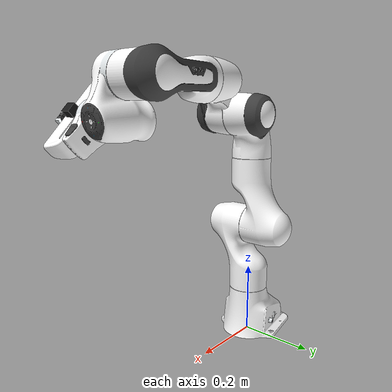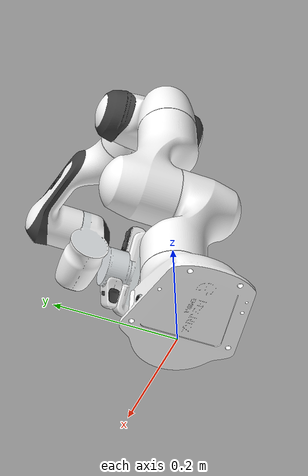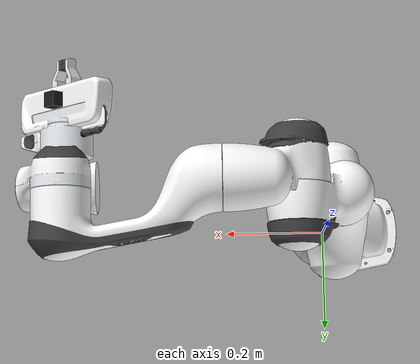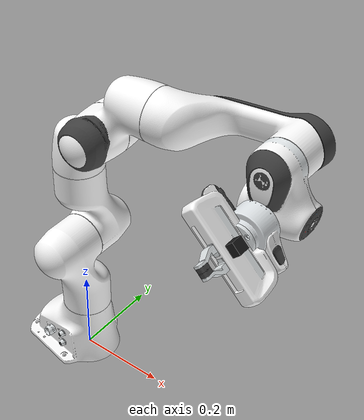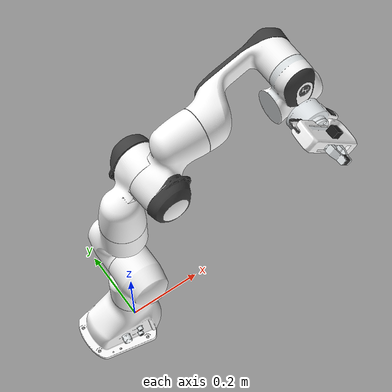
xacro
<?xml version="1.0"?>
<robot xmlns:xacro="http://www.ros.org/wiki/xacro" name="panda">
  <!-- 简化的URDF - 直接加载Gazebo配置 -->

  <xacro:include filename="$(find panda)/urdf/panda_arm.urdf.xacro"/>
  <xacro:include filename="$(find panda)/urdf/hand.xacro"/>
  <xacro:include filename="$(find panda)/urdf/camera.xacro"/>
  <xacro:include filename="$(find panda)/urdf/panda.gazebo.xacro"/>
  <xacro:include filename="$(find panda)/urdf/ros_control.xacro"/>

  <!-- 直接调用宏，移除所有条件判断 -->
  <xacro:panda_arm in_gazebo="true"/>
  <xacro:hand ns="panda" rpy="0 0 ${-pi/4}" connected_to="panda_link8"/>
  <xacro:hand_camera ns="panda" parent="panda_hand" xyz="-0.025 0 0.04" rpy="0 ${-pi/2} 0"/>
  <xacro:panda_gazebo robot_name="panda"/>

  <xacro:panda_ros_control robot_name="panda"/>

  <!-- Gazebo ros2_control 插件 -->
  <gazebo>
    <plugin name="gazebo_ros2_control" filename="libgazebo_ros2_control.so">
      <parameters>$(find panda)/config/ros2_controllers.yaml</parameters>
    </plugin>
  </gazebo>

</robot>

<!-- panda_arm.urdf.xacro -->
<robot xmlns:xacro="http://www.ros.org/wiki/xacro" name="panda">
  <xacro:macro name="panda_arm" params="arm_id:='panda' description_pkg:='panda' connected_to:='' in_gazebo='false' xyz:='0 0 0' rpy:='0 0 0'">
    <!-- If using custom frame with ${connected_to} param, make sure 'world' frame exists in its TF tree -->
    <xacro:if value="${connected_to == ''}">
      <link name="world" />
      <xacro:property name="base_frame_name" value="world"/>
    </xacro:if>
    <xacro:unless value="${connected_to == ''}">
      <xacro:property name="base_frame_name" value="${connected_to}"/>
    </xacro:unless>
    <joint name="${arm_id}_to_${base_frame_name}" type="fixed">
      <parent link="${base_frame_name}"/>
      <child link="${arm_id}_link0"/>
      <origin rpy="${rpy}" xyz="${xyz}"/>
      <xacro:unless value="${in_gazebo == 'false'}">
        <dynamics damping="1.0"/>
      </xacro:unless>
    </joint>
    <link name="${arm_id}_link0">
      <visual>
        <geometry>
          <mesh filename="file://$(find ${description_pkg})/meshes/visual/link0.dae"/>
        </geometry>
      </visual>
      <collision>
        <geometry>
          <mesh filename="file://$(find ${description_pkg})/meshes/collision/link0.stl"/>
        </geometry>
      </collision>
      <xacro:unless value="${in_gazebo == 'false'}">
        <inertial>
          <origin xyz="0 0 0" rpy="0 0 0"/>
          <mass value="3.06"/>
          <inertia ixx="0.3" ixy="0.0" ixz="0.0" iyy="0.3" iyz="0.0" izz="0.3"/>
        </inertial>
      </xacro:unless>
    </link>
    <link name="${arm_id}_link1">
      <visual>
        <geometry>
          <mesh filename="file://$(find ${description_pkg})/meshes/visual/link1.dae"/>
        </geometry>
      </visual>
      <collision>
        <geometry>
          <mesh filename="file://$(find ${description_pkg})/meshes/collision/link1.stl"/>
        </geometry>
      </collision>
      <inertial>
        <origin xyz="3.875e-03 2.081e-03 -0.1750" rpy="0 0 0"/>
        <mass value="4.970684"/>
        <inertia ixx="7.0337e-01" ixy="-1.3900e-04" ixz="6.7720e-03" iyy="7.0661e-01" iyz="1.9169e-02" izz="9.1170e-03"/>
      </inertial>
    </link>
    <joint name="${arm_id}_joint1" type="revolute">
      <safety_controller k_position="100.0" k_velocity="40.0" soft_lower_limit="-2.8973" soft_upper_limit="2.8973"/>
      <origin rpy="0 0 0" xyz="0 0 0.333"/>
      <parent link="${arm_id}_link0"/>
      <child link="${arm_id}_link1"/>
      <axis xyz="0 0 1"/>
      <limit effort="87" lower="-2.8973" upper="2.8973" velocity="2.1750"/>
      <dynamics damping="0.5" friction="0.1"/>
    </joint>
    <link name="${arm_id}_link2">
      <visual>
        <geometry>
          <mesh filename="file://$(find ${description_pkg})/meshes/visual/link2.dae"/>
        </geometry>
      </visual>
      <collision>
        <geometry>
          <mesh filename="file://$(find ${description_pkg})/meshes/collision/link2.stl"/>
        </geometry>
      </collision>
      <inertial>
        <origin xyz="-3.141e-03 -2.872e-02 3.495e-03" rpy="0 0 0"/>
        <mass value="0.646926"/>
        <inertia ixx="7.9620e-03" ixy="-3.9250e-03" ixz="1.0254e-02" iyy="2.8110e-02" iyz="7.0400e-04" izz="2.5995e-02"/>
      </inertial>
    </link>
    <joint name="${arm_id}_joint2" type="revolute">
      <safety_controller k_position="100.0" k_velocity="40.0" soft_lower_limit="-1.7628" soft_upper_limit="1.7628"/>
      <origin rpy="${-pi/2} 0 0" xyz="0 0 0"/>
      <parent link="${arm_id}_link1"/>
      <child link="${arm_id}_link2"/>
      <axis xyz="0 0 1"/>
      <limit effort="87" lower="-1.7628" upper="1.7628" velocity="2.1750"/>
      <dynamics damping="0.5" friction="0.1"/>
    </joint>
    <link name="${arm_id}_link3">
      <visual>
        <geometry>
          <mesh filename="file://$(find ${description_pkg})/meshes/visual/link3.dae"/>
        </geometry>
      </visual>
      <collision>
        <geometry>
          <mesh filename="file://$(find ${description_pkg})/meshes/collision/link3.stl"/>
        </geometry>
      </collision>
      <inertial>
        <origin xyz="2.7518e-02 3.9252e-02 -6.6502e-02" rpy="0 0 0"/>
        <mass value="3.228604"/>
        <inertia ixx="3.7242e-02" ixy="-4.7610e-03" ixz="-1.1396e-02" iyy="3.6155e-02" iyz="-1.2805e-02" izz="1.0830e-02"/>
      </inertial>
    </link>
    <joint name="${arm_id}_joint3" type="revolute">
      <safety_controller k_position="100.0" k_velocity="40.0" soft_lower_limit="-2.8973" soft_upper_limit="2.8973"/>
      <origin rpy="${pi/2} 0 0" xyz="0 -0.316 0"/>
      <parent link="${arm_id}_link2"/>
      <child link="${arm_id}_link3"/>
      <axis xyz="0 0 1"/>
      <limit effort="87" lower="-2.8973" upper="2.8973" velocity="2.1750"/>
      <dynamics damping="0.5" friction="0.1"/>
    </joint>
    <link name="${arm_id}_link4">
      <visual>
        <geometry>
          <mesh filename="file://$(find ${description_pkg})/meshes/visual/link4.dae"/>
        </geometry>
      </visual>
      <collision>
        <geometry>
          <mesh filename="file://$(find ${description_pkg})/meshes/collision/link4.stl"/>
        </geometry>
      </collision>
      <inertial>
        <origin xyz="-5.317e-02 1.04419e-01 2.7454e-02" rpy="0 0 0"/>
        <mass value="3.587895"/>
        <inertia ixx="2.5853e-02" ixy="7.7960e-03" ixz="-1.3320e-03" iyy="1.9552e-02" iyz="8.6410e-03" izz="2.8323e-02"/>
      </inertial>
    </link>
    <joint name="${arm_id}_joint4" type="revolute">
      <safety_controller k_position="100.0" k_velocity="40.0" soft_lower_limit="-3.0718" soft_upper_limit="-0.0698"/>
      <origin rpy="${pi/2} 0 0" xyz="0.0825 0 0"/>
      <parent link="${arm_id}_link3"/>
      <child link="${arm_id}_link4"/>
      <axis xyz="0 0 1"/>
      <limit effort="87" lower="-3.0718" upper="-0.0698" velocity="2.1750"/>
      <dynamics damping="0.5" friction="0.1"/>
    </joint>
    <link name="${arm_id}_link5">
      <visual>
        <geometry>
          <mesh filename="file://$(find ${description_pkg})/meshes/visual/link5.dae"/>
        </geometry>
      </visual>
      <collision>
        <geometry>
          <mesh filename="file://$(find ${description_pkg})/meshes/collision/link5.stl"/>
        </geometry>
      </collision>
      <inertial>
        <origin xyz="-1.1953e-02 4.1065e-02 -3.8437e-02" rpy="0 0 0"/>
        <mass value="1.225946"/>
        <inertia ixx="3.5549e-02" ixy="-2.1170e-03" ixz="-4.0370e-03" iyy="2.9474e-02" iyz="2.2900e-04" izz="8.6270e-03"/>
      </inertial>
    </link>
    <joint name="${arm_id}_joint5" type="revolute">
      <safety_controller k_position="100.0" k_velocity="40.0" soft_lower_limit="-2.8973" soft_upper_limit="2.8973"/>
      <origin rpy="${-pi/2} 0 0" xyz="-0.0825 0.384 0"/>
      <parent link="${arm_id}_link4"/>
      <child link="${arm_id}_link5"/>
      <axis xyz="0 0 1"/>
      <limit effort="12" lower="-2.8973" upper="2.8973" velocity="2.6100"/>
      <dynamics damping="0.3" friction="0.1"/>
    </joint>
    <link name="${arm_id}_link6">
      <visual>
        <geometry>
          <mesh filename="file://$(find ${description_pkg})/meshes/visual/link6.dae"/>
        </geometry>
      </visual>
      <collision>
        <geometry>
          <mesh filename="file://$(find ${description_pkg})/meshes/collision/link6.stl"/>
        </geometry>
      </collision>
      <inertial>
        <origin xyz="6.0149e-02 -1.4117e-02 -1.0517e-02" rpy="0 0 0"/>
        <mass value="1.666555"/>
        <inertia ixx="1.9640e-03" ixy="1.0900e-04" ixz="-1.1580e-03" iyy="4.3540e-03" iyz="3.4100e-04" izz="5.4330e-03"/>
      </inertial>
    </link>
    <joint name="${arm_id}_joint6" type="revolute">
      <safety_controller k_position="100.0" k_velocity="40.0" soft_lower_limit="-0.0175" soft_upper_limit="3.7525"/>
      <origin rpy="${pi/2} 0 0" xyz="0 0 0"/>
      <parent link="${arm_id}_link5"/>
      <child link="${arm_id}_link6"/>
      <axis xyz="0 0 1"/>
      <limit effort="12" lower="-0.0175" upper="3.7525" velocity="2.6100"/>
      <dynamics damping="0.3" friction="0.1"/>
    </joint>
    <link name="${arm_id}_link7">
      <visual>
        <geometry>
          <mesh filename="file://$(find ${description_pkg})/meshes/visual/link7.dae"/>
        </geometry>
      </visual>
      <collision>
        <geometry>
          <mesh filename="file://$(find ${description_pkg})/meshes/collision/link7.stl"/>
        </geometry>
      </collision>
      <inertial>
        <origin xyz="1.0517e-02 -4.252e-03 6.1597e-02" rpy="0 0 0"/>
        <mass value="7.35522e-01"/>
        <inertia ixx="1.2516e-02" ixy="-4.2800e-04" ixz="-1.1960e-03" iyy="1.0027e-02" iyz="-7.4100e-04" izz="4.8150e-03"/>
      </inertial>
    </link>
    <joint name="${arm_id}_joint7" type="revolute">
      <safety_controller k_position="100.0" k_velocity="40.0" soft_lower_limit="-2.8973" soft_upper_limit="2.8973"/>
      <origin rpy="0 0 0" xyz="0.088 0 0"/>
      <parent link="${arm_id}_link6"/>
      <child link="${arm_id}_link7"/>
      <axis xyz="0 0 1"/>
      <limit effort="12" lower="-2.8973" upper="2.8973" velocity="2.6100"/>
      <dynamics damping="0.3" friction="0.1"/>
    </joint>
    <link name="${arm_id}_link8">
      <inertial>
        <origin xyz="0 0 0" rpy="0 0 0"/>
        <mass value="0.0"/>
        <inertia ixx="0.001" ixy="0.0" ixz="0.0" iyy="0.001" iyz="0.0" izz="0.001"/>
      </inertial>
    </link>
    <joint name="${arm_id}_joint8" type="fixed">
    <origin rpy="0 0 0" xyz="0 0 0.107"/>
      <parent link="${arm_id}_link7"/>
      <child link="${arm_id}_link8"/>
      <axis xyz="0 0 0"/>
    </joint>
  </xacro:macro>
</robot>

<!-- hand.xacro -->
<robot xmlns:xacro="http://www.ros.org/wiki/xacro" name="hand">
  <xacro:macro name="hand" params="connected_to:='' ns:='' rpy:='0 0 0' xyz:='0 0 0' description_pkg:='panda' ">
    <xacro:unless value="${connected_to == ''}">
      <joint name="${ns}_hand_joint" type="fixed">
        <parent link="${connected_to}"/>
        <child link="${ns}_hand"/>
        <origin xyz="${xyz}" rpy="0 0 ${-pi/4}"/>
      </joint>
    </xacro:unless>
    <link name="${ns}_hand">
      <visual>
        <geometry>
          <mesh filename="file://$(find ${description_pkg})/meshes/visual/hand.dae"/>
        </geometry>
      </visual>
      <collision>
        <geometry>
          <mesh filename="file://$(find ${description_pkg})/meshes/collision/hand.stl"/>
        </geometry>
      </collision>
      <inertial>
        <origin rpy="0 0 0" xyz="0 0.0015244 0.0275912"/>
        <mass value="0.73"/>
        <inertia ixx="0.00278560230025" ixy="0.0" ixz="0.0" iyy="0.000400033405336" iyz="0.0" izz="0.00256378041832"/>
      </inertial>
    </link>
    <link name="${ns}_leftfinger">
      <visual>
        <geometry>
          <mesh filename="file://$(find ${description_pkg})/meshes/visual/finger.dae"/>
        </geometry>
      </visual>
      <collision>
        <geometry>
          <mesh filename="file://$(find ${description_pkg})/meshes/collision/finger.stl"/>
        </geometry>
      </collision>
      <inertial>
        <origin rpy="0 0 0" xyz="0 0.0145644 0.0227941"/>
        <mass value="0.1"/>
        <inertia ixx="3.01220925051e-05" ixy="0.0" ixz="0.0" iyy="2.95873808038e-05" iyz="0.0" izz="6.95125211657e-06"/>
      </inertial>
    </link>
    <link name="${ns}_rightfinger">
      <visual>
        <origin xyz="0 0 0" rpy="0 0 ${pi}"/>
        <geometry>
          <mesh filename="file://$(find ${description_pkg})/meshes/visual/finger.dae"/>
        </geometry>
      </visual>
      <collision>
        <origin xyz="0 0 0" rpy="0 0 ${pi}"/>
        <geometry>
          <mesh filename="file://$(find ${description_pkg})/meshes/collision/finger.stl"/>
        </geometry>
      </collision>
      <inertial>
        <origin rpy="0 0 3.141592653589793" xyz="0 -0.0145644 0.0227941"/>
        <mass value="0.1"/>
        <inertia ixx="3.01220925051e-05" ixy="0.0" ixz="0.0" iyy="2.95873808038e-05" iyz="0.0" izz="6.95125211657e-06"/>
      </inertial>
    </link>
    <joint name="${ns}_finger_joint1" type="prismatic">
      <parent link="${ns}_hand"/>
      <child link="${ns}_leftfinger"/>
      <origin xyz="0 0 0.0584" rpy="0 0 0"/>
      <axis xyz="0 1 0"/>
      <limit effort="20" lower="0.0" upper="0.04" velocity="0.2"/>
      <dynamics damping="10.0" friction="0.1"/>
    </joint>
    <joint name="${ns}_finger_joint2" type="prismatic">
      <parent link="${ns}_hand"/>
      <child link="${ns}_rightfinger"/>
      <origin xyz="0 0 0.0584" rpy="0 0 0"/>
      <axis xyz="0 -1 0"/>
      <limit effort="20" lower="0.0" upper="0.04" velocity="0.2"/>
      <dynamics damping="10.0" friction="0.1"/>
    </joint>
  </xacro:macro>
</robot>

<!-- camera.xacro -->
<robot xmlns:xacro="http://www.ros.org/wiki/xacro" name="camera">
  <xacro:macro name="hand_camera"
               params="ns:=''
                       parent:='panda_hand'
                       xyz:='0 0 0.07'
                       rpy:='0 0 0'
                       camera_name:='hand_camera'
                       hfov:='1.047'
                       width:='640'
                       height:='480'
                       near:='0.05'
                       far:='5.0'
                       update_rate:='30'">

    <!-- ============= 相机机身 link ============= -->
    <link name="${ns}_camera_link">
      <inertial>
        <origin xyz="0 0 0" rpy="0 0 0"/>
        <mass value="0.05"/>
        <inertia ixx="1e-5" ixy="0" ixz="0"
                 iyy="1e-5" iyz="0" izz="1e-5"/>
      </inertial>
      <visual>
        <origin xyz="0 0 0" rpy="0 0 0"/>
        <geometry>
          <!-- 一个小相机壳，方便在 Gazebo / RViz 里看到 -->
          <box size="0.025 0.025 0.025"/>
        </geometry>
        <material name="camera_body">
          <color rgba="0.1 0.1 0.1 1"/>
        </material>
      </visual>
      <collision>
        <origin xyz="0 0 0" rpy="0 0 0"/>
        <geometry>
          <box size="0.025 0.025 0.025"/>
        </geometry>
      </collision>
    </link>

    <!-- ============= 把相机固定到 hand 关节 ============= -->
    <joint name="${ns}_camera_joint" type="fixed">
      <parent link="${parent}"/>
      <child link="${ns}_camera_link"/>
      <origin xyz="${xyz}" rpy="${rpy}"/>
    </joint>

    <!-- ============= 光学坐标系 (REP-103 / REP-104) =============
         camera_link body frame - x-前, y-左, z-上
         optical_frame          - x-右, y-下, z-前
         转换 - 绕 z 旋转 -pi/2, 再绕 y 旋转 -pi/2
    -->
    <link name="${ns}_camera_optical_frame"/>
    <joint name="${ns}_camera_optical_joint" type="fixed">
      <parent link="${ns}_camera_link"/>
      <child link="${ns}_camera_optical_frame"/>
      <origin xyz="0 0 0" rpy="${-pi/2} 0 ${-pi/2}"/>
    </joint>

    <!-- ============= Gazebo 材质 ============= -->
    <gazebo reference="${ns}_camera_link">
      <material>Gazebo/Black</material>
    </gazebo>

    <!-- ============= 深度相机 sensor (同时输出 RGB + 深度 + 点云) ============= -->
    <gazebo reference="${ns}_camera_link">
      <sensor name="${ns}_${camera_name}" type="depth">
        <update_rate>${update_rate}</update_rate>
        <always_on>true</always_on>
        <visualize>true</visualize>
        <camera>
          <horizontal_fov>${hfov}</horizontal_fov>
          <image>
            <width>${width}</width>
            <height>${height}</height>
            <format>R8G8B8</format>
          </image>
          <clip>
            <near>${near}</near>
            <far>${far}</far>
          </clip>
          <depth_camera>
            <output>depth</output>
          </depth_camera>
        </camera>
        <!--
          libgazebo_ros_camera.so 同时继承 CameraPlugin 和 DepthCameraPlugin
          配合 type="depth" 可以一次性发布彩色图 / 深度图 / 点云
        -->
        <plugin name="${ns}_${camera_name}_controller"
                filename="libgazebo_ros_camera.so">
          <camera_name>${camera_name}</camera_name>
          <frame_name>${ns}_camera_optical_frame</frame_name>
          <hack_baseline>0.0</hack_baseline>
        </plugin>
      </sensor>
    </gazebo>

  </xacro:macro>
</robot>
